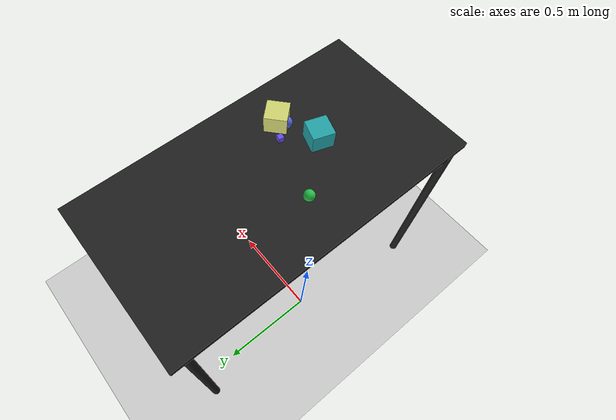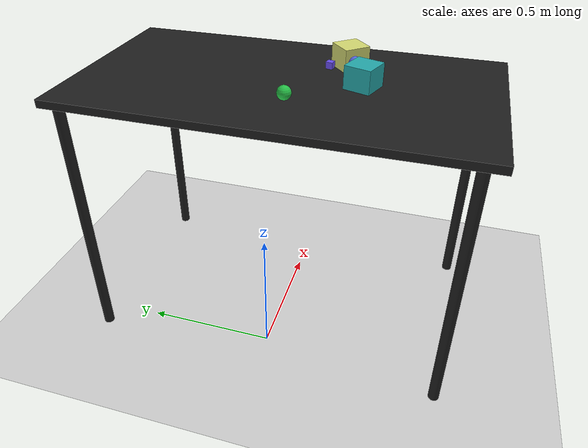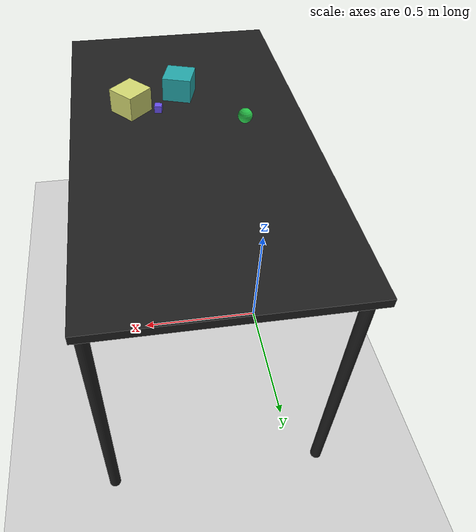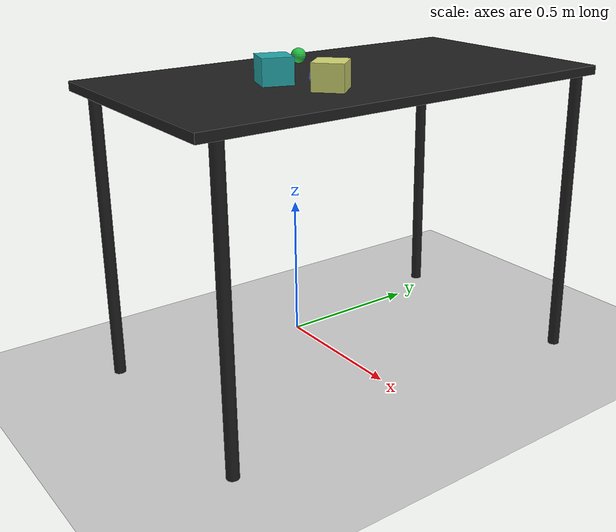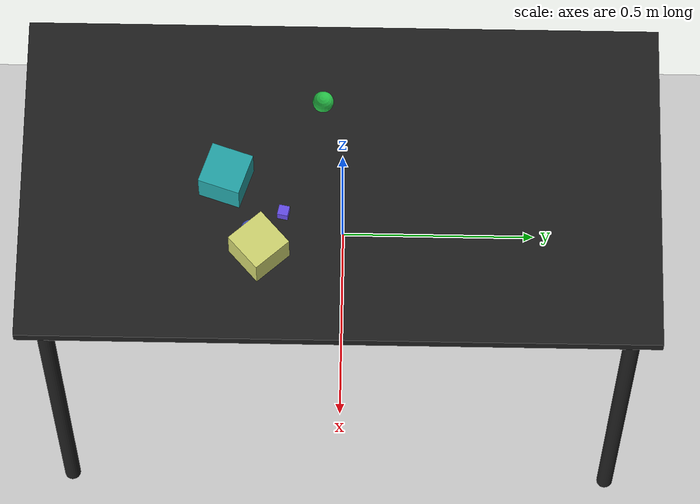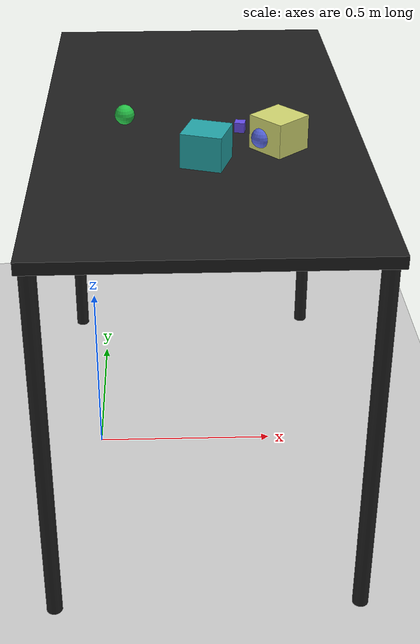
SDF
<?xml version="1.0" ?>
<sdf version="1.6">
  <world name="arm_world">
    <plugin filename="gz-sim-physics-system" name="gz::sim::systems::Physics">
      <engine>
        <filename>libgz-physics-bullet-featherstone-plugin.so</filename>
      </engine>
    </plugin>
    <plugin filename="gz-sim-user-commands-system" name="gz::sim::systems::UserCommands"/>
    <plugin filename="gz-sim-scene-broadcaster-system" name="gz::sim::systems::SceneBroadcaster"/>
    <plugin filename="gz-sim-sensors-system" name="gz::sim::systems::Sensors">
      <render_engine>ogre2</render_engine>
    </plugin>
    <gravity>0.0 0.0 -9.8</gravity>
    <scene>
      <shadows>false</shadows>
    </scene>
    <gui>
      <camera name="user_camera">
        <pose>0.75 -0.75 1.4 0 0.29 2.21</pose>
      </camera>
    </gui>
    <include>
      <uri>https://fuel.gazebosim.org/1.0/OpenRobotics/models/Sun</uri>
    </include>
    <model name="table">
      <static>true</static>
      <include>
        <uri>model://table</uri>
      </include>
      <pose>0.29 0 0 0 0 1.5708</pose>
    </model>
    <model name="ground_plane">
      <static>true</static>
      <link name="link">
        <collision name="collision">
          <geometry>
            <plane>
              <normal>0 0 1</normal>
            </plane>
          </geometry>
          <surface>
            <friction>
              <ode>
                <mu>1.0</mu>
                <mu2>1.0</mu2>
              </ode>
            </friction>
          </surface>
        </collision>
        <visual name="visual">
          <geometry>
            <plane>
              <normal>0 0 1</normal>
              <size>100 100</size>
            </plane>
          </geometry>
          <material>
            <ambient>0.8 0.8 0.8 1</ambient>
            <diffuse>0.8 0.8 0.8 1</diffuse>
            <specular>0.8 0.8 0.8 1</specular>
          </material>
        </visual>
      </link>
    </model>
    <model name="cube_l_0">
      <pose>0.477 -0.187 1.05 0 0 2.3</pose>
      <link name="cube_l_0_link">
        <collision name="cube_l_0_collision">
          <geometry>
            <box>
              <size>0.1 0.1 0.1</size>
            </box>
          </geometry>
        </collision>
        <visual name="cube_l_0_visual">
          <geometry>
            <box>
              <size>0.1 0.1 0.1</size>
            </box>
          </geometry>
          <material>
            <ambient>0.82 0.84 0.44 1</ambient>
            <diffuse>0.82 0.84 0.44 1</diffuse>
          </material>
        </visual>
        <velocity_decay>
          <linear>1</linear>
          <angular>1</angular>
        </velocity_decay>
      </link>
    </model>
    <model name="cube_s_1">
      <pose>0.387 -0.132 1.05 0 0 2.94</pose>
      <link name="cube_s_1_link">
        <collision name="cube_s_1_collision">
          <geometry>
            <box>
              <size>0.025 0.025 0.025</size>
            </box>
          </geometry>
        </collision>
        <visual name="cube_s_1_visual">
          <geometry>
            <box>
              <size>0.025 0.025 0.025</size>
            </box>
          </geometry>
          <material>
            <ambient>0.4 0.3 0.92 1</ambient>
            <diffuse>0.4 0.3 0.92 1</diffuse>
          </material>
        </visual>
        <velocity_decay>
          <linear>1</linear>
          <angular>1</angular>
        </velocity_decay>
      </link>
    </model>
    <model name="sphere_m_2">
      <pose>0.434 -0.207 1.05 0 0 4.81</pose>
      <link name="sphere_m_2_link">
        <collision name="sphere_m_2_collision">
          <geometry>
            <sphere>
              <radius>0.025</radius>
            </sphere>
          </geometry>
        </collision>
        <visual name="sphere_m_2_visual">
          <geometry>
            <sphere>
              <radius>0.025</radius>
            </sphere>
          </geometry>
          <material>
            <ambient>0.34 0.4 0.87 1</ambient>
            <diffuse>0.34 0.4 0.87 1</diffuse>
          </material>
        </visual>
        <velocity_decay>
          <linear>1</linear>
          <angular>1</angular>
        </velocity_decay>
      </link>
    </model>
    <model name="sphere_m_3">
      <pose>0.103 -0.045 1.05 0 0 4.88</pose>
      <link name="sphere_m_3_link">
        <collision name="sphere_m_3_collision">
          <geometry>
            <sphere>
              <radius>0.025</radius>
            </sphere>
          </geometry>
        </collision>
        <visual name="sphere_m_3_visual">
          <geometry>
            <sphere>
              <radius>0.025</radius>
            </sphere>
          </geometry>
          <material>
            <ambient>0.15 0.76 0.28 1</ambient>
            <diffuse>0.15 0.76 0.28 1</diffuse>
          </material>
        </visual>
        <velocity_decay>
          <linear>1</linear>
          <angular>1</angular>
        </velocity_decay>
      </link>
    </model>
    <model name="cube_l_4">
      <pose>0.299 -0.268 1.05 0 0 2.82</pose>
      <link name="cube_l_4_link">
        <collision name="cube_l_4_collision">
          <geometry>
            <box>
              <size>0.1 0.1 0.1</size>
            </box>
          </geometry>
        </collision>
        <visual name="cube_l_4_visual">
          <geometry>
            <box>
              <size>0.1 0.1 0.1</size>
            </box>
          </geometry>
          <material>
            <ambient>0.14 0.65 0.66 1</ambient>
            <diffuse>0.14 0.65 0.66 1</diffuse>
          </material>
        </visual>
        <velocity_decay>
          <linear>1</linear>
          <angular>1</angular>
        </velocity_decay>
      </link>
    </model>
  </world>
</sdf>

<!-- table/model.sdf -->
<sdf version="1.5">
  <model name="table">
    <static>true</static>
    <link name="link">
      <collision name="surface">
        <pose>0 0 1.0 0 0 0</pose>
        <geometry>
          <box>
            <size>1.5 0.8 0.03</size>
          </box>
        </geometry>
        <surface>
          <friction>
            <ode>
              <mu>0.6</mu>
              <mu2>0.6</mu2>
            </ode>
          </friction>
        </surface>
      </collision>
      <visual name="surface">
        <pose>0 0 1.0 0 0 0</pose>
        <geometry>
          <box>
            <size>1.5 0.8 0.03</size>
          </box>
        </geometry>
        <material>
          <script>
            <uri>file://media/materials/scripts/gazebo.material</uri>
            <name>Gazebo/Black</name>
          </script>
        </material>
      </visual>
      <collision name="front_left_leg">
        <pose>0.68 0.38 0.5 0 0 0</pose>
        <geometry>
          <cylinder>
            <radius>0.02</radius>
            <length>1.0</length>
          </cylinder>
        </geometry>
      </collision>
      <visual name="front_left_leg">
        <pose>0.68 0.38 0.5 0 0 0</pose>
        <geometry>
          <cylinder>
            <radius>0.02</radius>
            <length>1.0</length>
          </cylinder>
        </geometry>
        <material>
          <script>
            <uri>file://media/materials/scripts/gazebo.material</uri>
            <name>Gazebo/Black</name>
          </script>
        </material>
      </visual>
      <collision name="front_right_leg">
        <pose>0.68 -0.38 0.5 0 0 0</pose>
        <geometry>
          <cylinder>
            <radius>0.02</radius>
            <length>1.0</length>
          </cylinder>
        </geometry>
      </collision>
      <visual name="front_right_leg">
        <pose>0.68 -0.38 0.5 0 0 0</pose>
        <geometry>
          <cylinder>
            <radius>0.02</radius>
            <length>1.0</length>
          </cylinder>
        </geometry>
        <material>
          <script>
            <uri>file://media/materials/scripts/gazebo.material</uri>
            <name>Gazebo/Black</name>
          </script>
        </material>
      </visual>
      <collision name="back_right_leg">
        <pose>-0.68 -0.38 0.5 0 0 0</pose>
        <geometry>
          <cylinder>
            <radius>0.02</radius>
            <length>1.0</length>
          </cylinder>
        </geometry>
      </collision>
      <visual name="back_right_leg">
        <pose>-0.68 -0.38 0.5 0 0 0</pose>
        <geometry>
          <cylinder>
            <radius>0.02</radius>
            <length>1.0</length>
          </cylinder>
        </geometry>
        <material>
          <script>
            <uri>file://media/materials/scripts/gazebo.material</uri>
            <name>Gazebo/Black</name>
          </script>
        </material>
      </visual>
      <collision name="back_left_leg">
        <pose>-0.68 0.38 0.5 0 0 0</pose>
        <geometry>
          <cylinder>
            <radius>0.02</radius>
            <length>1.0</length>
          </cylinder>
        </geometry>
      </collision>
      <visual name="back_left_leg">
        <pose>-0.68 0.38 0.5 0 0 0</pose>
        <geometry>
          <cylinder>
            <radius>0.02</radius>
            <length>1.0</length>
          </cylinder>
        </geometry>
        <material>
          <script>
            <uri>file://media/materials/scripts/gazebo.material</uri>
            <name>Gazebo/Black</name>
          </script>
        </material>
      </visual>
    </link>
  </model>
</sdf>
